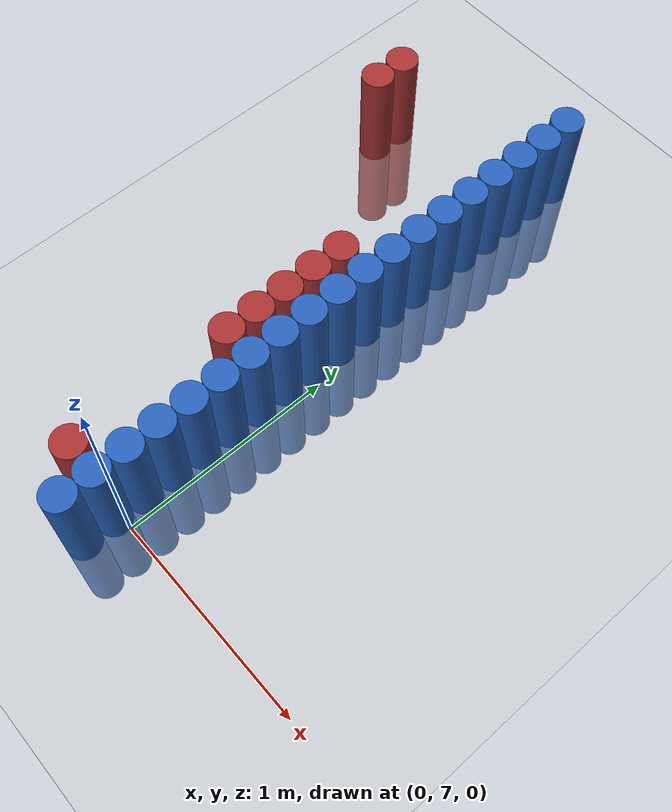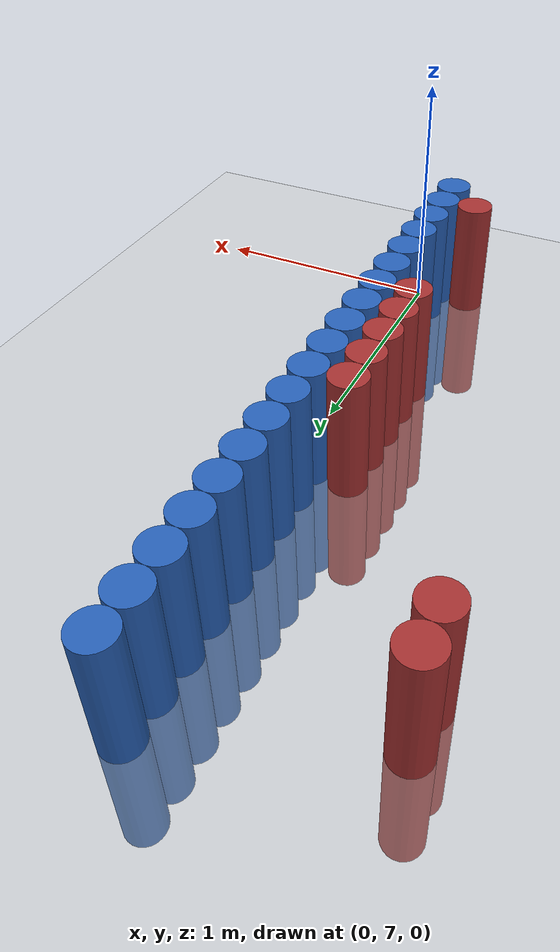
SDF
<sdf version="1.6">
 <world name="world_43">
  <model name="ground_plane">
   <static>1</static>
   <link name="link">
    <collision name="collision">
     <geometry><plane><normal>0 0 1</normal><size>100 100</size></plane></geometry>
     <surface><friction><ode><mu>100</mu><mu2>50</mu2></ode></friction></surface>
    </collision>
    <visual name="visual">
     <cast_shadows>0</cast_shadows>
     <geometry><plane><normal>0 0 1</normal><size>100 100</size></plane></geometry>
     <material>
      <script><uri>file://media/materials/scripts/gazebo.material</uri><name>Gazebo/Grey</name></script>
     </material>
    </visual>
   </link>
  </model>
  <model name="unit_cylinder_155">
   <static>1</static>
   <pose>-0.825000 9.075000 0.000000 0.000000 0.000000 0.000000</pose>
   <link name="link">
    <inertial>
     <mass>1</mass>
     <inertia><ixx>0.145833</ixx><ixy>0</ixy><ixz>0</ixz><iyy>0.145833</iyy><iyz>0</iyz><izz>0.125</izz></inertia>
    </inertial>
    <collision name="collision">
     <geometry><cylinder><radius>0.075000</radius><length>1</length></cylinder></geometry>
    </collision>
    <visual name="visual">
     <geometry><cylinder><radius>0.075000</radius><length>1</length></cylinder></geometry>
     <material>
      <ambient>0.648000 0.192000 0.192000 1</ambient>
      <diffuse>0.648000 0.192000 0.192000 1</diffuse>
     </material>
     <material>
      <script><name>Gazebo/Grey</name><uri>file://media/materials/scripts/gazebo.material</uri></script>
     </material>
    </visual>
   </link>
  </model>
  <model name="unit_cylinder_156">
   <static>1</static>
   <pose>-0.825000 9.225000 0.000000 0.000000 0.000000 0.000000</pose>
   <link name="link">
    <inertial>
     <mass>1</mass>
     <inertia><ixx>0.145833</ixx><ixy>0</ixy><ixz>0</ixz><iyy>0.145833</iyy><iyz>0</iyz><izz>0.125</izz></inertia>
    </inertial>
    <collision name="collision">
     <geometry><cylinder><radius>0.075000</radius><length>1</length></cylinder></geometry>
    </collision>
    <visual name="visual">
     <geometry><cylinder><radius>0.075000</radius><length>1</length></cylinder></geometry>
     <material>
      <ambient>0.648000 0.192000 0.192000 1</ambient>
      <diffuse>0.648000 0.192000 0.192000 1</diffuse>
     </material>
     <material>
      <script><name>Gazebo/Grey</name><uri>file://media/materials/scripts/gazebo.material</uri></script>
     </material>
    </visual>
   </link>
  </model>
  <model name="unit_cylinder_173">
   <static>1</static>
   <pose>-0.225000 6.975000 0.000000 0.000000 0.000000 0.000000</pose>
   <link name="link">
    <inertial>
     <mass>1</mass>
     <inertia><ixx>0.145833</ixx><ixy>0</ixy><ixz>0</ixz><iyy>0.145833</iyy><iyz>0</iyz><izz>0.125</izz></inertia>
    </inertial>
    <collision name="collision">
     <geometry><cylinder><radius>0.075000</radius><length>1</length></cylinder></geometry>
    </collision>
    <visual name="visual">
     <geometry><cylinder><radius>0.075000</radius><length>1</length></cylinder></geometry>
     <material>
      <ambient>0.648000 0.192000 0.192000 1</ambient>
      <diffuse>0.648000 0.192000 0.192000 1</diffuse>
     </material>
     <material>
      <script><name>Gazebo/Grey</name><uri>file://media/materials/scripts/gazebo.material</uri></script>
     </material>
    </visual>
   </link>
  </model>
  <model name="unit_cylinder_174">
   <static>1</static>
   <pose>-0.225000 7.725000 0.000000 0.000000 0.000000 0.000000</pose>
   <link name="link">
    <inertial>
     <mass>1</mass>
     <inertia><ixx>0.145833</ixx><ixy>0</ixy><ixz>0</ixz><iyy>0.145833</iyy><iyz>0</iyz><izz>0.125</izz></inertia>
    </inertial>
    <collision name="collision">
     <geometry><cylinder><radius>0.075000</radius><length>1</length></cylinder></geometry>
    </collision>
    <visual name="visual">
     <geometry><cylinder><radius>0.075000</radius><length>1</length></cylinder></geometry>
     <material>
      <ambient>0.648000 0.192000 0.192000 1</ambient>
      <diffuse>0.648000 0.192000 0.192000 1</diffuse>
     </material>
     <material>
      <script><name>Gazebo/Grey</name><uri>file://media/materials/scripts/gazebo.material</uri></script>
     </material>
    </visual>
   </link>
  </model>
  <model name="unit_cylinder_175">
   <static>1</static>
   <pose>-0.225000 7.875000 0.000000 0.000000 0.000000 0.000000</pose>
   <link name="link">
    <inertial>
     <mass>1</mass>
     <inertia><ixx>0.145833</ixx><ixy>0</ixy><ixz>0</ixz><iyy>0.145833</iyy><iyz>0</iyz><izz>0.125</izz></inertia>
    </inertial>
    <collision name="collision">
     <geometry><cylinder><radius>0.075000</radius><length>1</length></cylinder></geometry>
    </collision>
    <visual name="visual">
     <geometry><cylinder><radius>0.075000</radius><length>1</length></cylinder></geometry>
     <material>
      <ambient>0.648000 0.192000 0.192000 1</ambient>
      <diffuse>0.648000 0.192000 0.192000 1</diffuse>
     </material>
     <material>
      <script><name>Gazebo/Grey</name><uri>file://media/materials/scripts/gazebo.material</uri></script>
     </material>
    </visual>
   </link>
  </model>
  <model name="unit_cylinder_176">
   <static>1</static>
   <pose>-0.225000 8.025000 0.000000 0.000000 0.000000 0.000000</pose>
   <link name="link">
    <inertial>
     <mass>1</mass>
     <inertia><ixx>0.145833</ixx><ixy>0</ixy><ixz>0</ixz><iyy>0.145833</iyy><iyz>0</iyz><izz>0.125</izz></inertia>
    </inertial>
    <collision name="collision">
     <geometry><cylinder><radius>0.075000</radius><length>1</length></cylinder></geometry>
    </collision>
    <visual name="visual">
     <geometry><cylinder><radius>0.075000</radius><length>1</length></cylinder></geometry>
     <material>
      <ambient>0.648000 0.192000 0.192000 1</ambient>
      <diffuse>0.648000 0.192000 0.192000 1</diffuse>
     </material>
     <material>
      <script><name>Gazebo/Grey</name><uri>file://media/materials/scripts/gazebo.material</uri></script>
     </material>
    </visual>
   </link>
  </model>
  <model name="unit_cylinder_177">
   <static>1</static>
   <pose>-0.225000 8.175000 0.000000 0.000000 0.000000 0.000000</pose>
   <link name="link">
    <inertial>
     <mass>1</mass>
     <inertia><ixx>0.145833</ixx><ixy>0</ixy><ixz>0</ixz><iyy>0.145833</iyy><iyz>0</iyz><izz>0.125</izz></inertia>
    </inertial>
    <collision name="collision">
     <geometry><cylinder><radius>0.075000</radius><length>1</length></cylinder></geometry>
    </collision>
    <visual name="visual">
     <geometry><cylinder><radius>0.075000</radius><length>1</length></cylinder></geometry>
     <material>
      <ambient>0.648000 0.192000 0.192000 1</ambient>
      <diffuse>0.648000 0.192000 0.192000 1</diffuse>
     </material>
     <material>
      <script><name>Gazebo/Grey</name><uri>file://media/materials/scripts/gazebo.material</uri></script>
     </material>
    </visual>
   </link>
  </model>
  <model name="unit_cylinder_178">
   <static>1</static>
   <pose>-0.225000 8.325000 0.000000 0.000000 0.000000 0.000000</pose>
   <link name="link">
    <inertial>
     <mass>1</mass>
     <inertia><ixx>0.145833</ixx><ixy>0</ixy><ixz>0</ixz><iyy>0.145833</iyy><iyz>0</iyz><izz>0.125</izz></inertia>
    </inertial>
    <collision name="collision">
     <geometry><cylinder><radius>0.075000</radius><length>1</length></cylinder></geometry>
    </collision>
    <visual name="visual">
     <geometry><cylinder><radius>0.075000</radius><length>1</length></cylinder></geometry>
     <material>
      <ambient>0.648000 0.192000 0.192000 1</ambient>
      <diffuse>0.648000 0.192000 0.192000 1</diffuse>
     </material>
     <material>
      <script><name>Gazebo/Grey</name><uri>file://media/materials/scripts/gazebo.material</uri></script>
     </material>
    </visual>
   </link>
  </model>
  <model name="unit_cylinder_190">
   <static>1</static>
   <pose>-0.075000 6.825000 0.000000 0.000000 0.000000 0.000000</pose>
   <link name="link">
    <inertial>
     <mass>1</mass>
     <inertia><ixx>0.145833</ixx><ixy>0</ixy><ixz>0</ixz><iyy>0.145833</iyy><iyz>0</iyz><izz>0.125</izz></inertia>
    </inertial>
    <collision name="collision">
     <geometry><cylinder><radius>0.075000</radius><length>1</length></cylinder></geometry>
    </collision>
    <visual name="visual">
     <geometry><cylinder><radius>0.075000</radius><length>1</length></cylinder></geometry>
     <material>
      <ambient>0.152000 0.379000 0.720000 1</ambient>
      <diffuse>0.152000 0.379000 0.720000 1</diffuse>
     </material>
     <material>
      <script><name>Gazebo/Grey</name><uri>file://media/materials/scripts/gazebo.material</uri></script>
     </material>
    </visual>
   </link>
  </model>
  <model name="unit_cylinder_191">
   <static>1</static>
   <pose>-0.075000 6.975000 0.000000 0.000000 0.000000 0.000000</pose>
   <link name="link">
    <inertial>
     <mass>1</mass>
     <inertia><ixx>0.145833</ixx><ixy>0</ixy><ixz>0</ixz><iyy>0.145833</iyy><iyz>0</iyz><izz>0.125</izz></inertia>
    </inertial>
    <collision name="collision">
     <geometry><cylinder><radius>0.075000</radius><length>1</length></cylinder></geometry>
    </collision>
    <visual name="visual">
     <geometry><cylinder><radius>0.075000</radius><length>1</length></cylinder></geometry>
     <material>
      <ambient>0.152000 0.379000 0.720000 1</ambient>
      <diffuse>0.152000 0.379000 0.720000 1</diffuse>
     </material>
     <material>
      <script><name>Gazebo/Grey</name><uri>file://media/materials/scripts/gazebo.material</uri></script>
     </material>
    </visual>
   </link>
  </model>
  <model name="unit_cylinder_192">
   <static>1</static>
   <pose>-0.075000 7.125000 0.000000 0.000000 0.000000 0.000000</pose>
   <link name="link">
    <inertial>
     <mass>1</mass>
     <inertia><ixx>0.145833</ixx><ixy>0</ixy><ixz>0</ixz><iyy>0.145833</iyy><iyz>0</iyz><izz>0.125</izz></inertia>
    </inertial>
    <collision name="collision">
     <geometry><cylinder><radius>0.075000</radius><length>1</length></cylinder></geometry>
    </collision>
    <visual name="visual">
     <geometry><cylinder><radius>0.075000</radius><length>1</length></cylinder></geometry>
     <material>
      <ambient>0.152000 0.379000 0.720000 1</ambient>
      <diffuse>0.152000 0.379000 0.720000 1</diffuse>
     </material>
     <material>
      <script><name>Gazebo/Grey</name><uri>file://media/materials/scripts/gazebo.material</uri></script>
     </material>
    </visual>
   </link>
  </model>
  <model name="unit_cylinder_193">
   <static>1</static>
   <pose>-0.075000 7.275000 0.000000 0.000000 0.000000 0.000000</pose>
   <link name="link">
    <inertial>
     <mass>1</mass>
     <inertia><ixx>0.145833</ixx><ixy>0</ixy><ixz>0</ixz><iyy>0.145833</iyy><iyz>0</iyz><izz>0.125</izz></inertia>
    </inertial>
    <collision name="collision">
     <geometry><cylinder><radius>0.075000</radius><length>1</length></cylinder></geometry>
    </collision>
    <visual name="visual">
     <geometry><cylinder><radius>0.075000</radius><length>1</length></cylinder></geometry>
     <material>
      <ambient>0.152000 0.379000 0.720000 1</ambient>
      <diffuse>0.152000 0.379000 0.720000 1</diffuse>
     </material>
     <material>
      <script><name>Gazebo/Grey</name><uri>file://media/materials/scripts/gazebo.material</uri></script>
     </material>
    </visual>
   </link>
  </model>
  <model name="unit_cylinder_194">
   <static>1</static>
   <pose>-0.075000 7.425000 0.000000 0.000000 0.000000 0.000000</pose>
   <link name="link">
    <inertial>
     <mass>1</mass>
     <inertia><ixx>0.145833</ixx><ixy>0</ixy><ixz>0</ixz><iyy>0.145833</iyy><iyz>0</iyz><izz>0.125</izz></inertia>
    </inertial>
    <collision name="collision">
     <geometry><cylinder><radius>0.075000</radius><length>1</length></cylinder></geometry>
    </collision>
    <visual name="visual">
     <geometry><cylinder><radius>0.075000</radius><length>1</length></cylinder></geometry>
     <material>
      <ambient>0.152000 0.379000 0.720000 1</ambient>
      <diffuse>0.152000 0.379000 0.720000 1</diffuse>
     </material>
     <material>
      <script><name>Gazebo/Grey</name><uri>file://media/materials/scripts/gazebo.material</uri></script>
     </material>
    </visual>
   </link>
  </model>
  <model name="unit_cylinder_195">
   <static>1</static>
   <pose>-0.075000 7.575000 0.000000 0.000000 0.000000 0.000000</pose>
   <link name="link">
    <inertial>
     <mass>1</mass>
     <inertia><ixx>0.145833</ixx><ixy>0</ixy><ixz>0</ixz><iyy>0.145833</iyy><iyz>0</iyz><izz>0.125</izz></inertia>
    </inertial>
    <collision name="collision">
     <geometry><cylinder><radius>0.075000</radius><length>1</length></cylinder></geometry>
    </collision>
    <visual name="visual">
     <geometry><cylinder><radius>0.075000</radius><length>1</length></cylinder></geometry>
     <material>
      <ambient>0.152000 0.379000 0.720000 1</ambient>
      <diffuse>0.152000 0.379000 0.720000 1</diffuse>
     </material>
     <material>
      <script><name>Gazebo/Grey</name><uri>file://media/materials/scripts/gazebo.material</uri></script>
     </material>
    </visual>
   </link>
  </model>
  <model name="unit_cylinder_196">
   <static>1</static>
   <pose>-0.075000 7.725000 0.000000 0.000000 0.000000 0.000000</pose>
   <link name="link">
    <inertial>
     <mass>1</mass>
     <inertia><ixx>0.145833</ixx><ixy>0</ixy><ixz>0</ixz><iyy>0.145833</iyy><iyz>0</iyz><izz>0.125</izz></inertia>
    </inertial>
    <collision name="collision">
     <geometry><cylinder><radius>0.075000</radius><length>1</length></cylinder></geometry>
    </collision>
    <visual name="visual">
     <geometry><cylinder><radius>0.075000</radius><length>1</length></cylinder></geometry>
     <material>
      <ambient>0.152000 0.379000 0.720000 1</ambient>
      <diffuse>0.152000 0.379000 0.720000 1</diffuse>
     </material>
     <material>
      <script><name>Gazebo/Grey</name><uri>file://media/materials/scripts/gazebo.material</uri></script>
     </material>
    </visual>
   </link>
  </model>
  <model name="unit_cylinder_197">
   <static>1</static>
   <pose>-0.075000 7.875000 0.000000 0.000000 0.000000 0.000000</pose>
   <link name="link">
    <inertial>
     <mass>1</mass>
     <inertia><ixx>0.145833</ixx><ixy>0</ixy><ixz>0</ixz><iyy>0.145833</iyy><iyz>0</iyz><izz>0.125</izz></inertia>
    </inertial>
    <collision name="collision">
     <geometry><cylinder><radius>0.075000</radius><length>1</length></cylinder></geometry>
    </collision>
    <visual name="visual">
     <geometry><cylinder><radius>0.075000</radius><length>1</length></cylinder></geometry>
     <material>
      <ambient>0.152000 0.379000 0.720000 1</ambient>
      <diffuse>0.152000 0.379000 0.720000 1</diffuse>
     </material>
     <material>
      <script><name>Gazebo/Grey</name><uri>file://media/materials/scripts/gazebo.material</uri></script>
     </material>
    </visual>
   </link>
  </model>
  <model name="unit_cylinder_198">
   <static>1</static>
   <pose>-0.075000 8.025000 0.000000 0.000000 0.000000 0.000000</pose>
   <link name="link">
    <inertial>
     <mass>1</mass>
     <inertia><ixx>0.145833</ixx><ixy>0</ixy><ixz>0</ixz><iyy>0.145833</iyy><iyz>0</iyz><izz>0.125</izz></inertia>
    </inertial>
    <collision name="collision">
     <geometry><cylinder><radius>0.075000</radius><length>1</length></cylinder></geometry>
    </collision>
    <visual name="visual">
     <geometry><cylinder><radius>0.075000</radius><length>1</length></cylinder></geometry>
     <material>
      <ambient>0.152000 0.379000 0.720000 1</ambient>
      <diffuse>0.152000 0.379000 0.720000 1</diffuse>
     </material>
     <material>
      <script><name>Gazebo/Grey</name><uri>file://media/materials/scripts/gazebo.material</uri></script>
     </material>
    </visual>
   </link>
  </model>
  <model name="unit_cylinder_199">
   <static>1</static>
   <pose>-0.075000 8.175000 0.000000 0.000000 0.000000 0.000000</pose>
   <link name="link">
    <inertial>
     <mass>1</mass>
     <inertia><ixx>0.145833</ixx><ixy>0</ixy><ixz>0</ixz><iyy>0.145833</iyy><iyz>0</iyz><izz>0.125</izz></inertia>
    </inertial>
    <collision name="collision">
     <geometry><cylinder><radius>0.075000</radius><length>1</length></cylinder></geometry>
    </collision>
    <visual name="visual">
     <geometry><cylinder><radius>0.075000</radius><length>1</length></cylinder></geometry>
     <material>
      <ambient>0.152000 0.379000 0.720000 1</ambient>
      <diffuse>0.152000 0.379000 0.720000 1</diffuse>
     </material>
     <material>
      <script><name>Gazebo/Grey</name><uri>file://media/materials/scripts/gazebo.material</uri></script>
     </material>
    </visual>
   </link>
  </model>
  <model name="unit_cylinder_200">
   <static>1</static>
   <pose>-0.075000 8.325000 0.000000 0.000000 0.000000 0.000000</pose>
   <link name="link">
    <inertial>
     <mass>1</mass>
     <inertia><ixx>0.145833</ixx><ixy>0</ixy><ixz>0</ixz><iyy>0.145833</iyy><iyz>0</iyz><izz>0.125</izz></inertia>
    </inertial>
    <collision name="collision">
     <geometry><cylinder><radius>0.075000</radius><length>1</length></cylinder></geometry>
    </collision>
    <visual name="visual">
     <geometry><cylinder><radius>0.075000</radius><length>1</length></cylinder></geometry>
     <material>
      <ambient>0.152000 0.379000 0.720000 1</ambient>
      <diffuse>0.152000 0.379000 0.720000 1</diffuse>
     </material>
     <material>
      <script><name>Gazebo/Grey</name><uri>file://media/materials/scripts/gazebo.material</uri></script>
     </material>
    </visual>
   </link>
  </model>
  <model name="unit_cylinder_201">
   <static>1</static>
   <pose>-0.075000 8.475000 0.000000 0.000000 0.000000 0.000000</pose>
   <link name="link">
    <inertial>
     <mass>1</mass>
     <inertia><ixx>0.145833</ixx><ixy>0</ixy><ixz>0</ixz><iyy>0.145833</iyy><iyz>0</iyz><izz>0.125</izz></inertia>
    </inertial>
    <collision name="collision">
     <geometry><cylinder><radius>0.075000</radius><length>1</length></cylinder></geometry>
    </collision>
    <visual name="visual">
     <geometry><cylinder><radius>0.075000</radius><length>1</length></cylinder></geometry>
     <material>
      <ambient>0.152000 0.379000 0.720000 1</ambient>
      <diffuse>0.152000 0.379000 0.720000 1</diffuse>
     </material>
     <material>
      <script><name>Gazebo/Grey</name><uri>file://media/materials/scripts/gazebo.material</uri></script>
     </material>
    </visual>
   </link>
  </model>
  <model name="unit_cylinder_202">
   <static>1</static>
   <pose>-0.075000 8.625000 0.000000 0.000000 0.000000 0.000000</pose>
   <link name="link">
    <inertial>
     <mass>1</mass>
     <inertia><ixx>0.145833</ixx><ixy>0</ixy><ixz>0</ixz><iyy>0.145833</iyy><iyz>0</iyz><izz>0.125</izz></inertia>
    </inertial>
    <collision name="collision">
     <geometry><cylinder><radius>0.075000</radius><length>1</length></cylinder></geometry>
    </collision>
    <visual name="visual">
     <geometry><cylinder><radius>0.075000</radius><length>1</length></cylinder></geometry>
     <material>
      <ambient>0.152000 0.379000 0.720000 1</ambient>
      <diffuse>0.152000 0.379000 0.720000 1</diffuse>
     </material>
     <material>
      <script><name>Gazebo/Grey</name><uri>file://media/materials/scripts/gazebo.material</uri></script>
     </material>
    </visual>
   </link>
  </model>
  <model name="unit_cylinder_203">
   <static>1</static>
   <pose>-0.075000 8.775000 0.000000 0.000000 0.000000 0.000000</pose>
   <link name="link">
    <inertial>
     <mass>1</mass>
     <inertia><ixx>0.145833</ixx><ixy>0</ixy><ixz>0</ixz><iyy>0.145833</iyy><iyz>0</iyz><izz>0.125</izz></inertia>
    </inertial>
    <collision name="collision">
     <geometry><cylinder><radius>0.075000</radius><length>1</length></cylinder></geometry>
    </collision>
    <visual name="visual">
     <geometry><cylinder><radius>0.075000</radius><length>1</length></cylinder></geometry>
     <material>
      <ambient>0.152000 0.379000 0.720000 1</ambient>
      <diffuse>0.152000 0.379000 0.720000 1</diffuse>
     </material>
     <material>
      <script><name>Gazebo/Grey</name><uri>file://media/materials/scripts/gazebo.material</uri></script>
     </material>
    </visual>
   </link>
  </model>
  <model name="unit_cylinder_204">
   <static>1</static>
   <pose>-0.075000 8.925000 0.000000 0.000000 0.000000 0.000000</pose>
   <link name="link">
    <inertial>
     <mass>1</mass>
     <inertia><ixx>0.145833</ixx><ixy>0</ixy><ixz>0</ixz><iyy>0.145833</iyy><iyz>0</iyz><izz>0.125</izz></inertia>
    </inertial>
    <collision name="collision">
     <geometry><cylinder><radius>0.075000</radius><length>1</length></cylinder></geometry>
    </collision>
    <visual name="visual">
     <geometry><cylinder><radius>0.075000</radius><length>1</length></cylinder></geometry>
     <material>
      <ambient>0.152000 0.379000 0.720000 1</ambient>
      <diffuse>0.152000 0.379000 0.720000 1</diffuse>
     </material>
     <material>
      <script><name>Gazebo/Grey</name><uri>file://media/materials/scripts/gazebo.material</uri></script>
     </material>
    </visual>
   </link>
  </model>
  <model name="unit_cylinder_205">
   <static>1</static>
   <pose>-0.075000 9.075000 0.000000 0.000000 0.000000 0.000000</pose>
   <link name="link">
    <inertial>
     <mass>1</mass>
     <inertia><ixx>0.145833</ixx><ixy>0</ixy><ixz>0</ixz><iyy>0.145833</iyy><iyz>0</iyz><izz>0.125</izz></inertia>
    </inertial>
    <collision name="collision">
     <geometry><cylinder><radius>0.075000</radius><length>1</length></cylinder></geometry>
    </collision>
    <visual name="visual">
     <geometry><cylinder><radius>0.075000</radius><length>1</length></cylinder></geometry>
     <material>
      <ambient>0.152000 0.379000 0.720000 1</ambient>
      <diffuse>0.152000 0.379000 0.720000 1</diffuse>
     </material>
     <material>
      <script><name>Gazebo/Grey</name><uri>file://media/materials/scripts/gazebo.material</uri></script>
     </material>
    </visual>
   </link>
  </model>
  <model name="unit_cylinder_206">
   <static>1</static>
   <pose>-0.075000 9.225000 0.000000 0.000000 0.000000 0.000000</pose>
   <link name="link">
    <inertial>
     <mass>1</mass>
     <inertia><ixx>0.145833</ixx><ixy>0</ixy><ixz>0</ixz><iyy>0.145833</iyy><iyz>0</iyz><izz>0.125</izz></inertia>
    </inertial>
    <collision name="collision">
     <geometry><cylinder><radius>0.075000</radius><length>1</length></cylinder></geometry>
    </collision>
    <visual name="visual">
     <geometry><cylinder><radius>0.075000</radius><length>1</length></cylinder></geometry>
     <material>
      <ambient>0.152000 0.379000 0.720000 1</ambient>
      <diffuse>0.152000 0.379000 0.720000 1</diffuse>
     </material>
     <material>
      <script><name>Gazebo/Grey</name><uri>file://media/materials/scripts/gazebo.material</uri></script>
     </material>
    </visual>
   </link>
  </model>
  <model name="unit_cylinder_207">
   <static>1</static>
   <pose>-0.075000 9.375000 0.000000 0.000000 0.000000 0.000000</pose>
   <link name="link">
    <inertial>
     <mass>1</mass>
     <inertia><ixx>0.145833</ixx><ixy>0</ixy><ixz>0</ixz><iyy>0.145833</iyy><iyz>0</iyz><izz>0.125</izz></inertia>
    </inertial>
    <collision name="collision">
     <geometry><cylinder><radius>0.075000</radius><length>1</length></cylinder></geometry>
    </collision>
    <visual name="visual">
     <geometry><cylinder><radius>0.075000</radius><length>1</length></cylinder></geometry>
     <material>
      <ambient>0.152000 0.379000 0.720000 1</ambient>
      <diffuse>0.152000 0.379000 0.720000 1</diffuse>
     </material>
     <material>
      <script><name>Gazebo/Grey</name><uri>file://media/materials/scripts/gazebo.material</uri></script>
     </material>
    </visual>
   </link>
  </model>
  <model name="unit_cylinder_208">
   <static>1</static>
   <pose>-0.075000 9.525000 0.000000 0.000000 0.000000 0.000000</pose>
   <link name="link">
    <inertial>
     <mass>1</mass>
     <inertia><ixx>0.145833</ixx><ixy>0</ixy><ixz>0</ixz><iyy>0.145833</iyy><iyz>0</iyz><izz>0.125</izz></inertia>
    </inertial>
    <collision name="collision">
     <geometry><cylinder><radius>0.075000</radius><length>1</length></cylinder></geometry>
    </collision>
    <visual name="visual">
     <geometry><cylinder><radius>0.075000</radius><length>1</length></cylinder></geometry>
     <material>
      <ambient>0.152000 0.379000 0.720000 1</ambient>
      <diffuse>0.152000 0.379000 0.720000 1</diffuse>
     </material>
     <material>
      <script><name>Gazebo/Grey</name><uri>file://media/materials/scripts/gazebo.material</uri></script>
     </material>
    </visual>
   </link>
  </model>
 </world>
</sdf>
